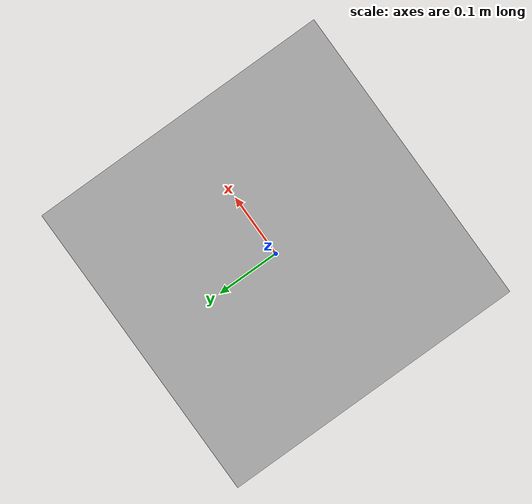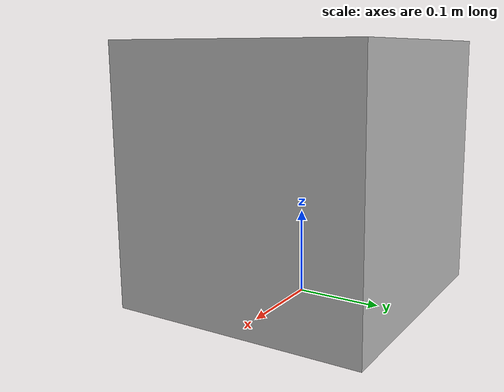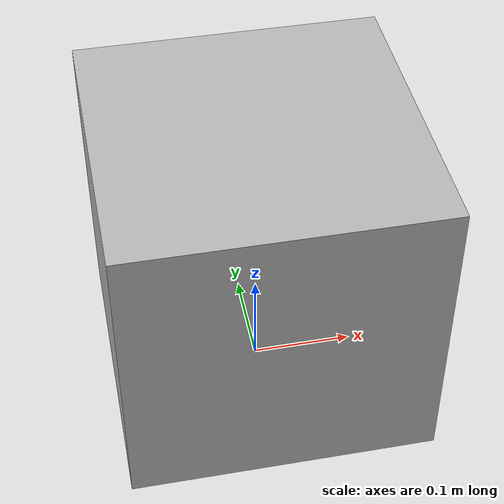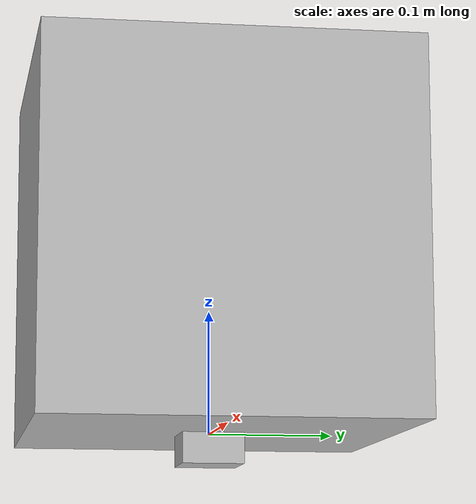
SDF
<?xml version="1.0" ?>
<sdf version="1.5">
      <model name="cock">
	<link name="cock-link">
	  <pose>.0 0 .15 0 0 0</pose>
	<gravity>false</gravity>
        <inertial>
          <inertia>
            <ixx>1</ixx>
            <ixy>0</ixy>
            <ixz>0</ixz>
            <iyy>1</iyy>
            <iyz>0</iyz>
            <izz>1</izz>
          </inertia>
          <mass>1.0</mass>
        </inertial>
        <visual name="cock-visual">
          <geometry>
            <box>
	      <size>.3 .3 .3</size>
	    </box>
          </geometry>
        </visual>
      </link>
      <link name="front_sonar_link">
	<gravity>false</gravity>
	<frame name="cock-link"/>
	<sensor type="sonar" name="cock_ray_left">
        <always_on>true</always_on>
        <update_rate>16.1</update_rate>
        <pose>0 0 .4 0 3.14 0 </pose>
        <visualize>true</visualize>
        <sonar>
          <min>.2</min>
	  <max>7.5</max>
	  <radius>1</radius>
        </sonar>
	<plugin name="sock-link-left" filename="SonarSensor.so"/>
	</sensor>
	<visual name="front_sonar_visual">
	  <geometry>
	    <box>
	      <size>.05 .05 .05</size>
	    </box>
	  </geometry>
	</visual>
      </link>
      <plugin name="model_push" filename="libmodel_push.so"></plugin>
    </model>

</sdf>
